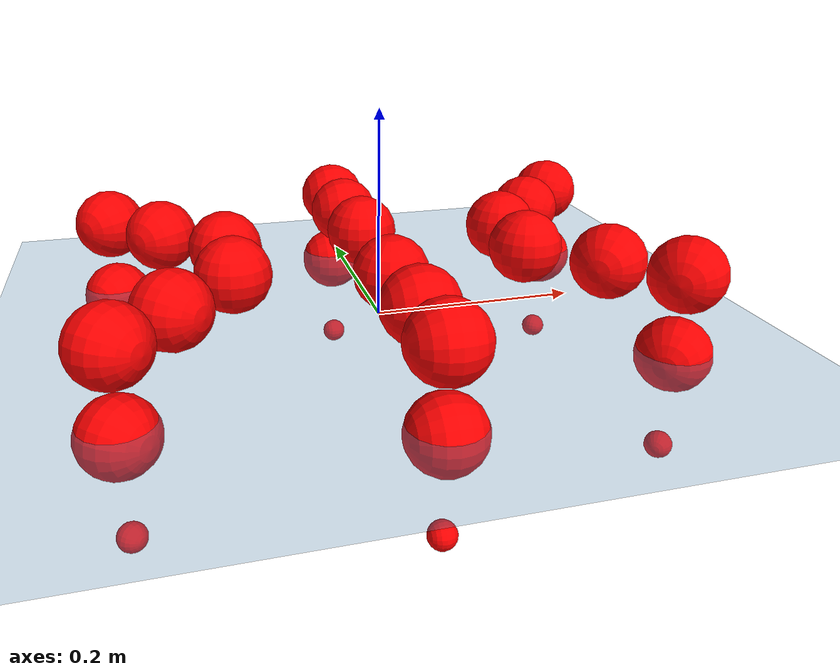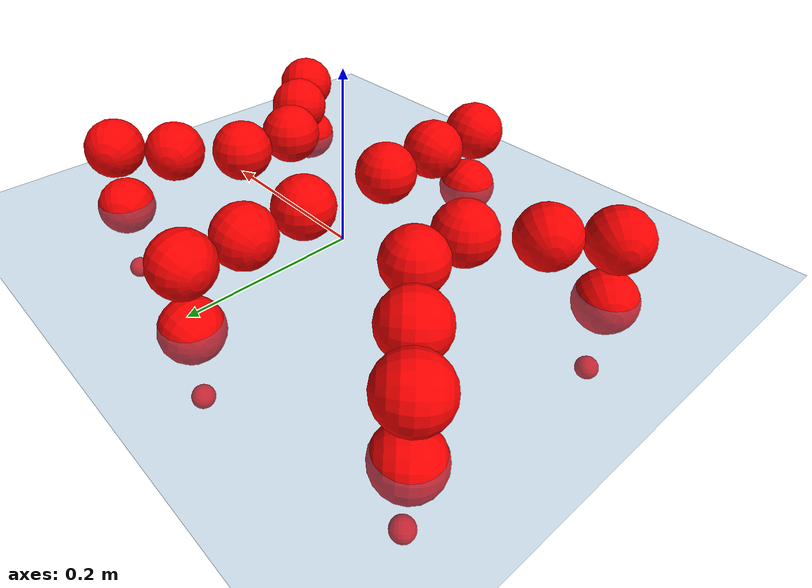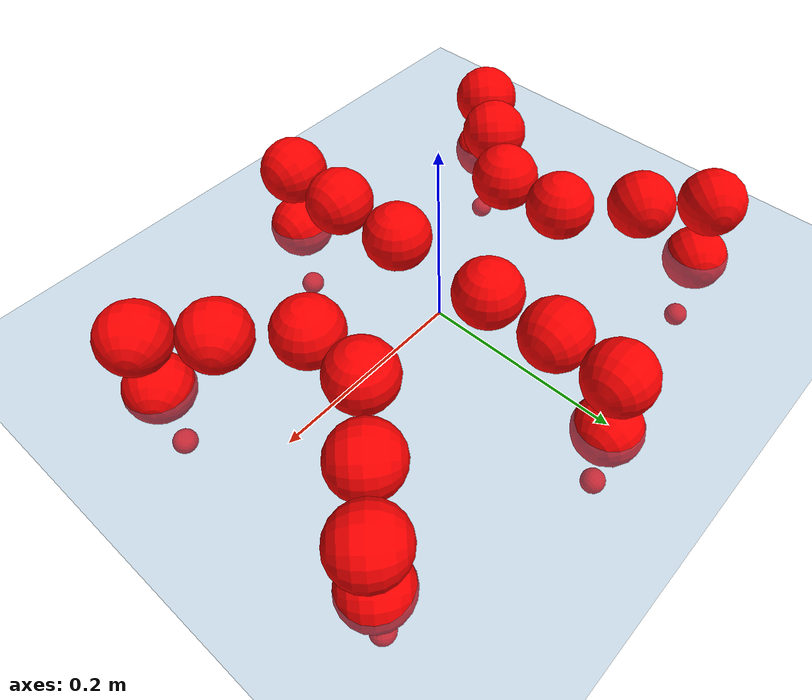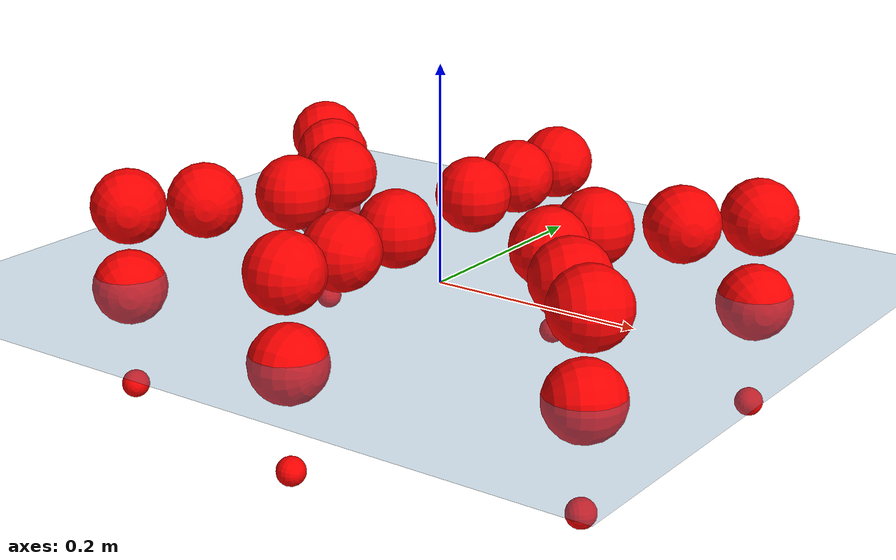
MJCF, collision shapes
<mujoco model="Golem">
  <compiler angle="radian" assetdir="assets" balanceinertia="true" inertiafromgeom="false"/>

  <option timestep="0.005" density="1.2" viscosity="2e-05"/>

  <size nkey="1"/>

  <visual>
    <quality shadowsize="8192"/>
    <map shadowclip="0.5"/>
  </visual>

  <default>
    <default class="/">
      <joint armature="0.01" damping="0.01" frictionloss="0.01"/>
      <geom contype="0" conaffinity="0" group="1" solref="-1000 -80"/>
      <site size="0.01 0.005 0.005" group="5"/>
      <general forcelimited="true" biastype="affine" gainprm="25" biasprm="0 -25 -0.5"/>
      <default class="visual">
        <geom type="mesh" group="2"/>
      </default>
      <default class="collision">
        <geom group="3"/>
      </default>
      <default class="foot">
        <geom size="0.01 0 0" condim="6" group="4" priority="1" solimp="0.015 1 0.01"/>
      </default>
      <default class="reward_collision_sphere">
        <geom group="5" rgba="1 0 0 1"/>
      </default>
    </default>
  </default>

  <asset>
    <texture type="skybox" colorspace="auto" name="//unnamed_texture_0" builtin="gradient" rgb1="0.95 0.95 0.95" rgb2="0.95 0.95 0.95" width="100" height="600"/>
    <texture type="2d" colorspace="auto" name="texplane" builtin="checker" rgb1="0.345 0.575 0.748" rgb2="0.345 0.575 0.748" markrgb="1 1 1" width="512" height="512"/>
    <material name="MatPlane" class="/" texture="texplane" texuniform="true" texrepeat="2 2" specular="0.9"/>
    <mesh name="body" class="/" file="body.stl" scale="0.001 0.001 0.001"/>
    <mesh name="coxa" class="/" file="coxa.stl" scale="0.001 0.001 0.001"/>
    <mesh name="femur" class="/" file="femur.stl" scale="0.001 0.001 0.001"/>
    <mesh name="tibia" class="/" file="tibia.stl" scale="0.001 0.001 0.001"/>
    <mesh name="tarsus" class="/" file="tarsus.stl" scale="0.001 0.001 0.001"/>
  </asset>

  <worldbody>
    <geom name="floor" class="/" size="100 100 0.125" type="plane" group="0" material="MatPlane"/>
    <light name="toplight_shadow" class="/" pos="0 0 5" dir="0.0990148 0.0990148 -0.990148" type="directional" ambient="0.04 0.04 0.04" diffuse="0.55 0.55 0.55" specular="0.12 0.12 0.12"/>
    <light name="toplight_fill" class="/" pos="0 0 5" dir="0.0990148 0.0990148 -0.990148" type="directional" castshadow="false" ambient="0.04 0.04 0.04" diffuse="0.3 0.3 0.3" specular="0.08 0.08 0.08"/>
    <body name="trunk" pos="-0.00189193 -0.000202017 0.000492901" quat="0.999999 -7.95272e-05 0.000165032 0.0013051">
      <inertial pos="0.00139163 0.00238911 -0.000189047" quat="0.999992 -0.000670427 0.00319717 -0.00240358" mass="2.31234" diaginertia="0.00542694 0.00120742 0.0119722"/>
      <joint name="//unnamed_joint_0" type="free"/>
      <geom name="//unnamed_geom_1" class="/" pos="0 0 0.0669445" quat="1 0 0 0" type="mesh" rgba="0.9 0.9 0.9 1" mesh="body"/>
      <site name="imu" class="/" pos="0.114971 0.0118023 0.102353" size="0.00865146"/>
      <camera name="track" class="/" pos="0 -1.31268 0" quat="0.707107 0.707107 0 0" mode="trackcom"/>
      <camera name="ego_camera" class="/" pos="0.116102 0 0.104601" quat="-0.5 -0.5 0.5 0.5"/>
      <body name="coxa_RR" pos="-0.158838 -0.0523373 0.0668958" quat="0.382729 -0.000533844 0.00114775 -0.92386">
        <inertial pos="0.00128532 6.80818e-05 0.000344489" quat="0.999916 0.00419877 0.00925664 -0.00807031" mass="0.138091" diaginertia="0.00586281 0.00124799 0.0130664"/>
        <joint name="coxa_joint_RR" class="/" pos="0 0 0" axis="0.00215742 0.00238342 -0.999995" stiffness="0.00018651" range="-3.13599 3.08672" armature="0.00979261" damping="0.0129706" frictionloss="0.00877648"/>
        <geom name="//unnamed_geom_2" class="/" type="mesh" rgba="0.2 0.2 0.2 1" mesh="coxa"/>
        <geom name="//unnamed_geom_3" class="reward_collision_sphere" size="0.0346058" pos="-0.0267927 0 0"/>
        <body name="femur_RR" pos="0.0538083 0.00280329 -0.00250029" quat="0.499771 -0.50071 0.499772 0.499745">
          <inertial pos="0.00261846 -0.000230574 -0.000307001" quat="0.999919 -0.00709271 0.00970069 -0.00413618" mass="0.132122" diaginertia="0.00576641 0.001239 0.0125944"/>
          <joint name="femur_joint_RR" class="/" pos="0 0 0" axis="-5.23564e-05 -0.000312016 -1" stiffness="0.00628403" range="-3.12072 3.11341" armature="0.00879735" damping="0.00863478" frictionloss="0.00858675"/>
          <geom name="//unnamed_geom_4" class="/" type="mesh" rgba="0.9 0.9 0.9 1" mesh="femur"/>
          <geom name="//unnamed_geom_5" class="reward_collision_sphere" size="0.0346058"/>
          <body name="tibia_RR" pos="0.00183486 -0.0687682 0.00173667" quat="-0.000279493 1 0.000145833 -0.000358163">
            <inertial pos="-0.00200862 -0.00031657 0.000483329" quat="1 0.000114986 0.000203761 -0.000229396" mass="0.133887" diaginertia="0.00567296 0.00121622 0.0128649"/>
            <joint name="tibia_joint_RR" class="/" pos="0 0 0" axis="0.00397548 0.0118322 0.999922" stiffness="0.00561061" range="-3.13387 3.13099" armature="0.00875768" damping="0.00142075" frictionloss="0.0088083"/>
            <geom name="//unnamed_geom_6" class="/" type="mesh" rgba="0.2 0.2 0.2 1" mesh="tibia"/>
            <geom name="//unnamed_geom_7" class="reward_collision_sphere" size="0.0346058"/>
            <body name="tarsus_RR" pos="0.0771566 0.00242799 1.13176e-05" quat="1 0.000322835 0.000279835 -0.000258382">
              <inertial pos="0.0546462 0.000232514 0.000354031" quat="0.500668 0.499792 0.499464 0.500075" mass="0.133924" diaginertia="0.00593565 0.00125234 0.0130155"/>
              <joint name="tarsus_joint_RR" class="/" pos="0 0 0" axis="0.0015618 0.000951137 0.999998" range="-3.14439 3.13611" armature="0.00844998" damping="0.0430555" frictionloss="0.00770097"/>
              <geom name="//unnamed_geom_8" class="/" type="mesh" rgba="0.9 0.9 0.9 1" mesh="tarsus"/>
              <geom name="foot_1" class="foot" size="0.00902794" pos="0.100026 0 0" quat="0 -0.707107 0 0.707107"/>
              <geom name="//unnamed_geom_10" class="reward_collision_sphere" size="0.0346058"/>
              <geom name="//unnamed_geom_11" class="reward_collision_sphere" size="0.0129772" pos="0.0960072 0 0"/>
              <site name="foot_1" class="foot" pos="0.100026 0 0" quat="0 -0.707107 0 0.707107" size="0.00865146"/>
            </body>
          </body>
        </body>
      </body>
      <body name="coxa_RM" pos="-0.00281204 -0.0856681 0.0647717" quat="0.707126 -0.000214082 -0.0002587 -0.707087">
        <inertial pos="-0.00244107 0.000579692 0.00142238" quat="0.999998 -0.000751608 0.00174621 -7.0479e-05" mass="0.13335" diaginertia="0.00584923 0.00126385 0.0130122"/>
        <joint name="coxa_joint_RM" class="/" pos="0 0 0" axis="-9.06764e-06 0.00307892 -0.999995" range="-3.09633 3.14659" armature="0.00947277" damping="0.0146958" frictionloss="0.00853109"/>
        <geom name="//unnamed_geom_12" class="/" type="mesh" rgba="0.2 0.2 0.2 1" mesh="coxa"/>
        <geom name="//unnamed_geom_13" class="reward_collision_sphere" size="0.0346058" pos="-0.0267927 0 0"/>
        <body name="femur_RM" pos="0.0515626 0.00220557 0.00116709" quat="0.500019 -0.499876 0.500325 0.499779">
          <inertial pos="-0.000102775 -0.00106355 -0.000425347" quat="0.999913 -0.00774596 0.00815715 -0.00691997" mass="0.125599" diaginertia="0.00548212 0.00118652 0.0122759"/>
          <joint name="femur_joint_RM" class="/" pos="0 0 0" axis="0.000822916 0.000386955 -1" range="-3.19255 3.15935" armature="0.00874779" damping="0.00851057" frictionloss="0.00866628"/>
          <geom name="//unnamed_geom_14" class="/" type="mesh" rgba="0.9 0.9 0.9 1" mesh="femur"/>
          <geom name="//unnamed_geom_15" class="reward_collision_sphere" size="0.0346058"/>
          <body name="tibia_RM" pos="-0.00106515 -0.0706168 -0.0014347" quat="-0.000285155 0.999999 -0.0012295 -0.00012773">
            <inertial pos="-0.00183251 0.000318906 0.00108229" quat="0.999947 0.00489599 0.000779995 -0.00899191" mass="0.12859" diaginertia="0.00564876 0.00118031 0.0121234"/>
            <joint name="tibia_joint_RM" class="/" pos="0 0 0" axis="-0.00179629 -0.00222673 0.999996" range="-3.14052 3.14086" armature="0.00889931" damping="0" frictionloss="0.00909283"/>
            <geom name="//unnamed_geom_16" class="/" type="mesh" rgba="0.2 0.2 0.2 1" mesh="tibia"/>
            <geom name="//unnamed_geom_17" class="reward_collision_sphere" size="0.0346058"/>
            <body name="tarsus_RM" pos="0.0785317 0.000317203 -0.00153836" quat="0.999999 0.00113508 6.64989e-05 0.00050846">
              <inertial pos="0.0534945 -8.57258e-06 0.000337635" quat="0.499057 0.498378 0.502498 0.500058" mass="0.128072" diaginertia="0.00572041 0.00120355 0.0126495"/>
              <joint name="tarsus_joint_RM" class="/" pos="0 0 0" axis="0.00465048 0.0113927 0.999924" range="-3.1743 3.1913" armature="0.00822276" damping="0.00705269" frictionloss="0.00751908"/>
              <geom name="//unnamed_geom_18" class="/" type="mesh" rgba="0.9 0.9 0.9 1" mesh="tarsus"/>
              <geom name="foot_2" class="foot" size="0.00832989" pos="0.100026 0 0" quat="0 -0.707107 0 0.707107"/>
              <geom name="//unnamed_geom_20" class="reward_collision_sphere" size="0.0346058"/>
              <geom name="//unnamed_geom_21" class="reward_collision_sphere" size="0.0129772" pos="0.0960072 0 0"/>
              <site name="foot_2" class="foot" pos="0.100026 0 0" quat="0 -0.707107 0 0.707107" size="0.00865146"/>
            </body>
          </body>
        </body>
      </body>
      <body name="coxa_RF" pos="0.15629 -0.052016 0.0683041" quat="0.92392 -0.000400372 0.0011123 -0.382585">
        <inertial pos="0.00271414 0.00265243 0.000221366" quat="0.999996 -0.000308828 -0.00131015 0.0023176" mass="0.127796" diaginertia="0.00573878 0.00119417 0.0125311"/>
        <joint name="coxa_joint_RF" class="/" pos="0 0 0" axis="0.00259652 -0.0034046 -0.999991" range="-3.13321 3.0863" armature="0.00883252" damping="0.0223728" frictionloss="0.00846309"/>
        <geom name="//unnamed_geom_22" class="/" type="mesh" rgba="0.2 0.2 0.2 1" mesh="coxa"/>
        <geom name="//unnamed_geom_23" class="reward_collision_sphere" size="0.0346058" pos="-0.0267927 0 0"/>
        <body name="femur_RF" pos="0.053443 -0.000594351 0.000419304" quat="0.499114 -0.500696 0.500254 0.499934">
          <inertial pos="6.71555e-05 -0.0012447 0.00275938" quat="0.999927 0.012044 -0.000315953 7.52348e-05" mass="0.127389" diaginertia="0.00548539 0.00117865 0.0117114"/>
          <joint name="femur_joint_RF" class="/" pos="0 0 0" axis="-0.00092479 -0.0130836 -0.999914" range="-3.13903 3.11997" armature="0.00988816" damping="0.00659192" frictionloss="0.00953985"/>
          <geom name="//unnamed_geom_24" class="/" type="mesh" rgba="0.9 0.9 0.9 1" mesh="femur"/>
          <geom name="//unnamed_geom_25" class="reward_collision_sphere" size="0.0346058"/>
          <body name="tibia_RF" pos="-0.00112238 -0.0696225 -0.00140546" quat="4.67914e-05 1 4.48038e-05 -0.000222313">
            <inertial pos="-0.000562443 0.000139769 -0.000317162" quat="0.999942 0.000708599 0.00898925 -0.00594269" mass="0.127598" diaginertia="0.00547408 0.00118949 0.0125812"/>
            <joint name="tibia_joint_RF" class="/" pos="0 0 0" axis="0.00340684 -0.00131844 0.999993" range="-3.13693 3.191" armature="0.00847901" damping="0.00368664" frictionloss="0.0083907"/>
            <geom name="//unnamed_geom_26" class="/" type="mesh" rgba="0.2 0.2 0.2 1" mesh="tibia"/>
            <geom name="//unnamed_geom_27" class="reward_collision_sphere" size="0.0346058"/>
            <body name="tarsus_RF" pos="0.0767547 -0.00125505 0.00169401" quat="0.999999 0.000237854 0.00125181 0.000100995">
              <inertial pos="0.0539614 0.000359074 0.000390319" quat="0.501348 0.505266 0.496981 0.496352" mass="0.127762" diaginertia="0.00557588 0.00119275 0.0119393"/>
              <joint name="tarsus_joint_RF" class="/" pos="0 0 0" axis="-0.00253874 -0.004566 0.999986" range="-3.13641 3.1314" armature="0.00861388" damping="0.00929181" frictionloss="0.00918415"/>
              <geom name="//unnamed_geom_28" class="/" type="mesh" rgba="0.9 0.9 0.9 1" mesh="tarsus"/>
              <geom name="foot_3" class="foot" size="0.00932311" pos="0.100026 0 0" quat="0 -0.707107 0 0.707107"/>
              <geom name="//unnamed_geom_30" class="reward_collision_sphere" size="0.0346058"/>
              <geom name="//unnamed_geom_31" class="reward_collision_sphere" size="0.0129772" pos="0.0960072 0 0"/>
              <site name="foot_3" class="foot" pos="0.100026 0 0" quat="0 -0.707107 0 0.707107" size="0.00865146"/>
            </body>
          </body>
        </body>
      </body>
      <body name="coxa_LR" pos="-0.158981 0.0555405 0.0681192" quat="0.383215 -6.52746e-05 0.00102757 0.923658">
        <inertial pos="-0.000530575 -0.000862169 -0.000471062" quat="0.999998 -0.000970571 0.00190975 0.00017979" mass="0.12991" diaginertia="0.00554301 0.00121636 0.012185"/>
        <joint name="coxa_joint_LR" class="/" pos="0 0 0" axis="0.0121311 0.00983797 -0.999878" range="-3.09295 3.13884" armature="0.00852665" damping="0.00665226" frictionloss="0.00873727"/>
        <geom name="//unnamed_geom_32" class="/" type="mesh" rgba="0.2 0.2 0.2 1" mesh="coxa"/>
        <geom name="//unnamed_geom_33" class="reward_collision_sphere" size="0.0346058" pos="-0.0267927 0 0"/>
        <body name="femur_LR" pos="0.0566524 -0.00138347 -0.00249471" quat="0.499943 -0.500001 0.499991 0.500065">
          <inertial pos="-0.000664577 0.000381895 0.00017416" quat="1 -0.000495022 0.000267876 0.000467205" mass="0.12871" diaginertia="0.00572112 0.00120602 0.0127135"/>
          <joint name="femur_joint_LR" class="/" pos="0 0 0" axis="0.00681187 -0.000875926 0.999976" range="-3.19151 3.18956" armature="0.0088539" damping="0" frictionloss="0.00902513"/>
          <geom name="//unnamed_geom_34" class="/" type="mesh" rgba="0.9 0.9 0.9 1" mesh="femur"/>
          <geom name="//unnamed_geom_35" class="reward_collision_sphere" size="0.0346058"/>
          <body name="tibia_LR" pos="0.000327207 -0.0727593 -0.00109387" quat="0.000391133 1 0.000165807 -0.000223324">
            <inertial pos="-0.00275691 0.000915971 -0.00244531" quat="0.999994 -0.00259235 -0.000670537 -0.00221022" mass="0.129388" diaginertia="0.00574468 0.00126598 0.012389"/>
            <joint name="tibia_joint_LR" class="/" pos="0 0 0" axis="-0.000413288 -0.00240972 -0.999997" range="-3.08809 3.18166" armature="0.00839814" damping="0.0015241" frictionloss="0.00885329"/>
            <geom name="//unnamed_geom_36" class="/" type="mesh" rgba="0.2 0.2 0.2 1" mesh="tibia"/>
            <geom name="//unnamed_geom_37" class="reward_collision_sphere" size="0.0346058"/>
            <body name="tarsus_LR" pos="0.0799229 0.000906084 -0.000268684" quat="1 2.0061e-05 -1.79929e-05 2.92925e-05">
              <inertial pos="0.0534819 -0.00036828 -0.000748723" quat="0.499223 0.501939 0.498621 0.500211" mass="0.133178" diaginertia="0.00579465 0.00128108 0.0129199"/>
              <joint name="tarsus_joint_LR" class="/" pos="0 0 0" axis="-0.00445303 0.0132562 -0.999902" stiffness="0.00545844" range="-3.12438 3.09895" armature="0.00901441" damping="0.0267259" frictionloss="0.00954962"/>
              <geom name="//unnamed_geom_38" class="/" type="mesh" rgba="0.9 0.9 0.9 1" mesh="tarsus"/>
              <geom name="foot_4" class="foot" size="0.00842102" pos="0.100026 0 0" quat="0.707107 0 -0.707107 0"/>
              <geom name="//unnamed_geom_40" class="reward_collision_sphere" size="0.0346058"/>
              <geom name="//unnamed_geom_41" class="reward_collision_sphere" size="0.0129772" pos="0.0960072 0 0"/>
              <site name="foot_4" class="foot" pos="0.100026 0 0" quat="0.707107 0 -0.707107 0" size="0.00865146"/>
            </body>
          </body>
        </body>
      </body>
      <body name="coxa_LM" pos="-0.00153568 0.0832861 0.0674878" quat="0.707201 5.0189e-05 6.45942e-05 0.707012">
        <inertial pos="0.00293451 0.00258154 -9.6815e-05" quat="1 3.10069e-06 -5.51183e-06 -3.27504e-06" mass="0.129426" diaginertia="0.00561687 0.00121805 0.0124956"/>
        <joint name="coxa_joint_LM" class="/" pos="0 0 0" axis="0.0052518 -0.000641025 -0.999986" range="-3.11387 3.11287" armature="0.00967636" damping="0.00451078" frictionloss="0.00913339"/>
        <geom name="//unnamed_geom_42" class="/" type="mesh" rgba="0.2 0.2 0.2 1" mesh="coxa"/>
        <geom name="//unnamed_geom_43" class="reward_collision_sphere" size="0.0346058" pos="-0.0267927 0 0"/>
        <body name="femur_LM" pos="0.0479717 0.00167339 -0.000824729" quat="0.499565 -0.500489 0.500864 0.49908">
          <inertial pos="-0.00160137 0.000880004 0.000967667" quat="0.999944 0.00243115 0.00487038 -0.00911263" mass="0.127928" diaginertia="0.00575754 0.00117812 0.0122034"/>
          <joint name="femur_joint_LM" class="/" pos="0 0 0" axis="-0.00035946 -0.00202845 0.999998" stiffness="0.00294995" range="-3.14403 3.1425" armature="0.00749537" damping="0" frictionloss="0.00875485"/>
          <geom name="//unnamed_geom_44" class="/" type="mesh" rgba="0.9 0.9 0.9 1" mesh="femur"/>
          <geom name="//unnamed_geom_45" class="reward_collision_sphere" size="0.0346058"/>
          <body name="tibia_LM" pos="0.00100947 -0.0675667 -0.00164117" quat="1.71525e-05 1 -9.7527e-06 -1.70646e-05">
            <inertial pos="-0.00092455 -9.68708e-05 0.000622638" quat="0.999996 0.0012839 -0.00217008 0.00150566" mass="0.125633" diaginertia="0.00555633 0.00122721 0.0126242"/>
            <joint name="tibia_joint_LM" class="/" pos="0 0 0" axis="0.00200689 -0.00739461 -0.999971" stiffness="8.24279e-05" range="-3.12959 3.17764" armature="0.00881004" damping="0" frictionloss="0.00811206"/>
            <geom name="//unnamed_geom_46" class="/" type="mesh" rgba="0.2 0.2 0.2 1" mesh="tibia"/>
            <geom name="//unnamed_geom_47" class="reward_collision_sphere" size="0.0346058"/>
            <body name="tarsus_LM" pos="0.0796758 0.000955421 -0.00117207" quat="1 -5.97488e-05 -0.000230344 -3.8185e-05">
              <inertial pos="0.0551378 0.000763121 -0.000184194" quat="0.498248 0.502611 0.49795 0.501176" mass="0.137983" diaginertia="0.00588776 0.00125258 0.012518"/>
              <joint name="tarsus_joint_LM" class="/" pos="0 0 0" axis="0.000326014 -5.50478e-05 -1" stiffness="0.0114552" range="-3.13773 3.10583" armature="0.00854892" damping="0.0195297" frictionloss="0.00861409"/>
              <geom name="//unnamed_geom_48" class="/" type="mesh" rgba="0.9 0.9 0.9 1" mesh="tarsus"/>
              <geom name="foot_5" class="foot" size="0.00859106" pos="0.100026 0 0" quat="0.707107 0 -0.707107 0"/>
              <geom name="//unnamed_geom_50" class="reward_collision_sphere" size="0.0346058"/>
              <geom name="//unnamed_geom_51" class="reward_collision_sphere" size="0.0129772" pos="0.0960072 0 0"/>
              <site name="foot_5" class="foot" pos="0.100026 0 0" quat="0.707107 0 -0.707107 0" size="0.00865146"/>
            </body>
          </body>
        </body>
      </body>
      <body name="coxa_LF" pos="0.158956 0.0543629 0.0683451" quat="0.923921 -2.57313e-05 8.25928e-05 0.382583">
        <inertial pos="-0.000298593 -0.000953597 0.000484968" quat="1 6.36433e-05 -9.79257e-05 0.000459948" mass="0.126604" diaginertia="0.00558713 0.00122927 0.0126701"/>
        <joint name="coxa_joint_LF" class="/" pos="0 0 0" axis="-0.00781881 -0.00507743 -0.999957" range="-3.13886 3.1347" armature="0.00840356" damping="0.00999284" frictionloss="0.00864118"/>
        <geom name="//unnamed_geom_52" class="/" type="mesh" rgba="0.2 0.2 0.2 1" mesh="coxa"/>
        <geom name="//unnamed_geom_53" class="reward_collision_sphere" size="0.0346058" pos="-0.0267927 0 0"/>
        <body name="femur_LF" pos="0.0524047 0.00297776 -0.00248127" quat="0.49986 -0.500187 0.499719 0.500234">
          <inertial pos="-0.00247781 7.06907e-06 0.000883388" quat="0.999996 0.00160448 -0.00132881 0.00170327" mass="0.130404" diaginertia="0.00559052 0.00116875 0.0121961"/>
          <joint name="femur_joint_LF" class="/" pos="0 0 0" axis="0.0132047 -0.00239833 0.99991" range="-3.13699 3.08794" armature="0.00769603" damping="0.00281781" frictionloss="0.00819639"/>
          <geom name="//unnamed_geom_54" class="/" type="mesh" rgba="0.9 0.9 0.9 1" mesh="femur"/>
          <geom name="//unnamed_geom_55" class="reward_collision_sphere" size="0.0346058"/>
          <body name="tibia_LF" pos="-0.00244502 -0.0705257 0.00196699" quat="0.000102642 1 9.40622e-05 0.000403514">
            <inertial pos="-0.000757462 0.000661619 -0.000749729" quat="0.999917 -0.00748232 0.001222 -0.0104521" mass="0.12693" diaginertia="0.00564916 0.0012184 0.0124414"/>
            <joint name="tibia_joint_LF" class="/" pos="0 0 0" axis="0.00017836 -0.00136104 -0.999999" range="-3.13105 3.12347" armature="0.00750075" damping="0" frictionloss="0.00856316"/>
            <geom name="//unnamed_geom_56" class="/" type="mesh" rgba="0.2 0.2 0.2 1" mesh="tibia"/>
            <geom name="//unnamed_geom_57" class="reward_collision_sphere" size="0.0346058"/>
            <body name="tarsus_LF" pos="0.0793939 0.000113043 0.000229212" quat="0.999999 -0.000248309 -0.000126748 0.0012893">
              <inertial pos="0.0560237 -0.00217291 0.00013567" quat="0.498055 0.501138 0.501094 0.499706" mass="0.126712" diaginertia="0.00559442 0.00118609 0.0123292"/>
              <joint name="tarsus_joint_LF" class="/" pos="0 0 0" axis="-0.010321 0.00779896 -0.999916" stiffness="0.000326348" range="-3.09088 3.13151" armature="0.00864666" damping="0.0231756" frictionloss="0.00845496"/>
              <geom name="//unnamed_geom_58" class="/" type="mesh" rgba="0.9 0.9 0.9 1" mesh="tarsus"/>
              <geom name="foot_6" class="foot" size="0.00783873" pos="0.100026 0 0" quat="0.707107 0 -0.707107 0"/>
              <geom name="//unnamed_geom_60" class="reward_collision_sphere" size="0.0346058"/>
              <geom name="//unnamed_geom_61" class="reward_collision_sphere" size="0.0129772" pos="0.0960072 0 0"/>
              <site name="foot_6" class="foot" pos="0.100026 0 0" quat="0.707107 0 -0.707107 0" size="0.00865146"/>
            </body>
          </body>
        </body>
      </body>
    </body>
  </worldbody>

  <contact>
    <pair class="/" geom1="floor" geom2="foot_1" name="//unnamed_contact_0"/>
    <pair class="/" geom1="floor" geom2="foot_2" name="//unnamed_contact_1"/>
    <pair class="/" geom1="floor" geom2="foot_3" name="//unnamed_contact_2"/>
    <pair class="/" geom1="floor" geom2="foot_4" name="//unnamed_contact_3"/>
    <pair class="/" geom1="floor" geom2="foot_5" name="//unnamed_contact_4"/>
    <pair class="/" geom1="floor" geom2="foot_6" name="//unnamed_contact_5"/>
  </contact>

  <actuator>
    <general name="coxa_joint_RR" class="/" joint="coxa_joint_RR" forcerange="-6.30534 6.30534" gainprm="21.1001" biasprm="0 -21.1001 -0.431857"/>
    <general name="femur_joint_RR" class="/" joint="femur_joint_RR" forcerange="-6.29112 6.29112" gainprm="21.1001" biasprm="0 -21.1001 -0.431857"/>
    <general name="tibia_joint_RR" class="/" joint="tibia_joint_RR" forcerange="-6.44686 6.44686" gainprm="21.1001" biasprm="0 -21.1001 -0.431857"/>
    <general name="tarsus_joint_RR" class="/" joint="tarsus_joint_RR" forcerange="-6.54886 6.54886" gainprm="21.1001" biasprm="0 -21.1001 -0.431857"/>
    <general name="coxa_joint_RM" class="/" joint="coxa_joint_RM" forcerange="-6.51693 6.51693" gainprm="21.1001" biasprm="0 -21.1001 -0.431857"/>
    <general name="femur_joint_RM" class="/" joint="femur_joint_RM" forcerange="-5.8102 5.8102" gainprm="21.1001" biasprm="0 -21.1001 -0.431857"/>
    <general name="tibia_joint_RM" class="/" joint="tibia_joint_RM" forcerange="-6.28272 6.28272" gainprm="21.1001" biasprm="0 -21.1001 -0.431857"/>
    <general name="tarsus_joint_RM" class="/" joint="tarsus_joint_RM" forcerange="-6.18499 6.18499" gainprm="21.1001" biasprm="0 -21.1001 -0.431857"/>
    <general name="coxa_joint_RF" class="/" joint="coxa_joint_RF" forcerange="-5.76863 5.76863" gainprm="21.1001" biasprm="0 -21.1001 -0.431857"/>
    <general name="femur_joint_RF" class="/" joint="femur_joint_RF" forcerange="-5.8518 5.8518" gainprm="21.1001" biasprm="0 -21.1001 -0.431857"/>
    <general name="tibia_joint_RF" class="/" joint="tibia_joint_RF" forcerange="-6.74101 6.74101" gainprm="21.1001" biasprm="0 -21.1001 -0.431857"/>
    <general name="tarsus_joint_RF" class="/" joint="tarsus_joint_RF" forcerange="-6.31907 6.31907" gainprm="21.1001" biasprm="0 -21.1001 -0.431857"/>
    <general name="coxa_joint_LR" class="/" joint="coxa_joint_LR" forcerange="-6.37979 6.37979" gainprm="21.1001" biasprm="0 -21.1001 -0.431857"/>
    <general name="femur_joint_LR" class="/" joint="femur_joint_LR" forcerange="-6.14314 6.14314" gainprm="21.1001" biasprm="0 -21.1001 -0.431857"/>
    <general name="tibia_joint_LR" class="/" joint="tibia_joint_LR" forcerange="-5.6944 5.6944" gainprm="21.1001" biasprm="0 -21.1001 -0.431857"/>
    <general name="tarsus_joint_LR" class="/" joint="tarsus_joint_LR" forcerange="-6.94072 6.94072" gainprm="21.1001" biasprm="0 -21.1001 -0.431857"/>
    <general name="coxa_joint_LM" class="/" joint="coxa_joint_LM" forcerange="-6.43883 6.43883" gainprm="21.1001" biasprm="0 -21.1001 -0.431857"/>
    <general name="femur_joint_LM" class="/" joint="femur_joint_LM" forcerange="-6.24695 6.24695" gainprm="21.1001" biasprm="0 -21.1001 -0.431857"/>
    <general name="tibia_joint_LM" class="/" joint="tibia_joint_LM" forcerange="-6.2695 6.2695" gainprm="21.1001" biasprm="0 -21.1001 -0.431857"/>
    <general name="tarsus_joint_LM" class="/" joint="tarsus_joint_LM" forcerange="-6.36546 6.36546" gainprm="21.1001" biasprm="0 -21.1001 -0.431857"/>
    <general name="coxa_joint_LF" class="/" joint="coxa_joint_LF" forcerange="-6.31381 6.31381" gainprm="21.1001" biasprm="0 -21.1001 -0.431857"/>
    <general name="femur_joint_LF" class="/" joint="femur_joint_LF" forcerange="-6.32845 6.32845" gainprm="21.1001" biasprm="0 -21.1001 -0.431857"/>
    <general name="tibia_joint_LF" class="/" joint="tibia_joint_LF" forcerange="-6.18043 6.18043" gainprm="21.1001" biasprm="0 -21.1001 -0.431857"/>
    <general name="tarsus_joint_LF" class="/" joint="tarsus_joint_LF" forcerange="-6.32353 6.32353" gainprm="21.1001" biasprm="0 -21.1001 -0.431857"/>
  </actuator>

  <sensor>
    <gyro site="imu" name="imu_angular_velocity"/>
    <velocimeter site="imu" name="imu_linear_velocity"/>
    <framelinvel objtype="site" objname="foot_1" name="foot_1_global_linear_velocity"/>
    <framelinvel objtype="site" objname="foot_2" name="foot_2_global_linear_velocity"/>
    <framelinvel objtype="site" objname="foot_3" name="foot_3_global_linear_velocity"/>
    <framelinvel objtype="site" objname="foot_4" name="foot_4_global_linear_velocity"/>
    <framelinvel objtype="site" objname="foot_5" name="foot_5_global_linear_velocity"/>
    <framelinvel objtype="site" objname="foot_6" name="foot_6_global_linear_velocity"/>
  </sensor>

  <keyframe>
    <key name="home" qpos="0 0 0.1457 1 0 0 0 0 0 0 0 0 0 0 0 0 0 0 0 0 0 0 0 0 0 0 0 0 0 0 0"/>
  </keyframe>
</mujoco>
